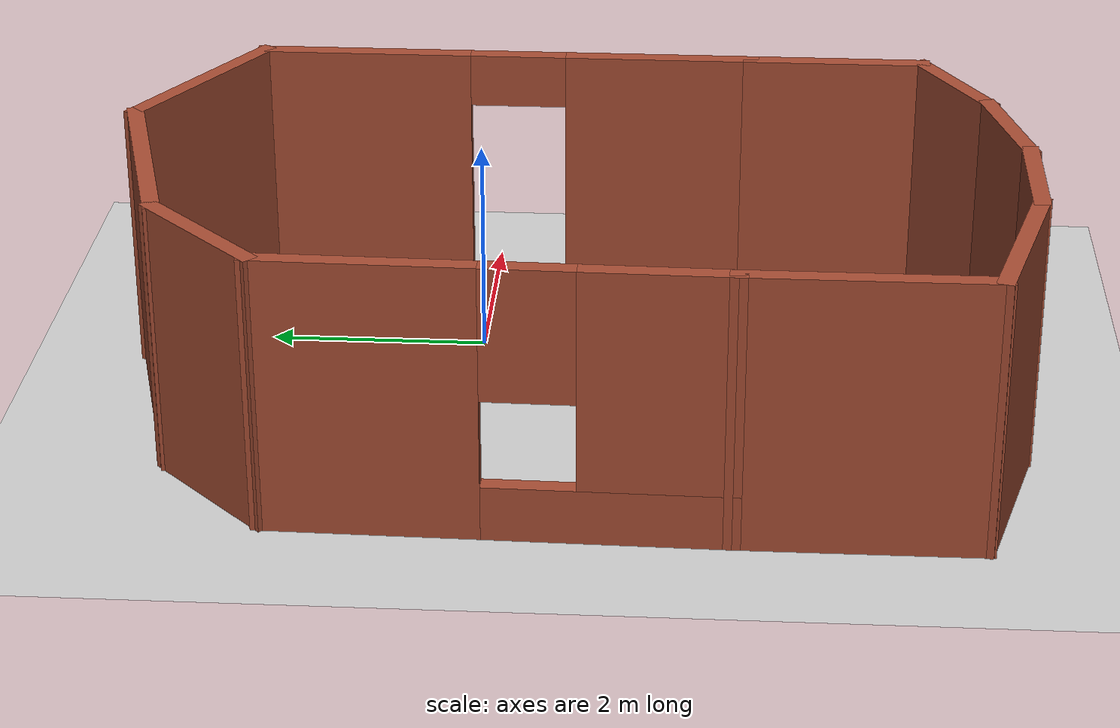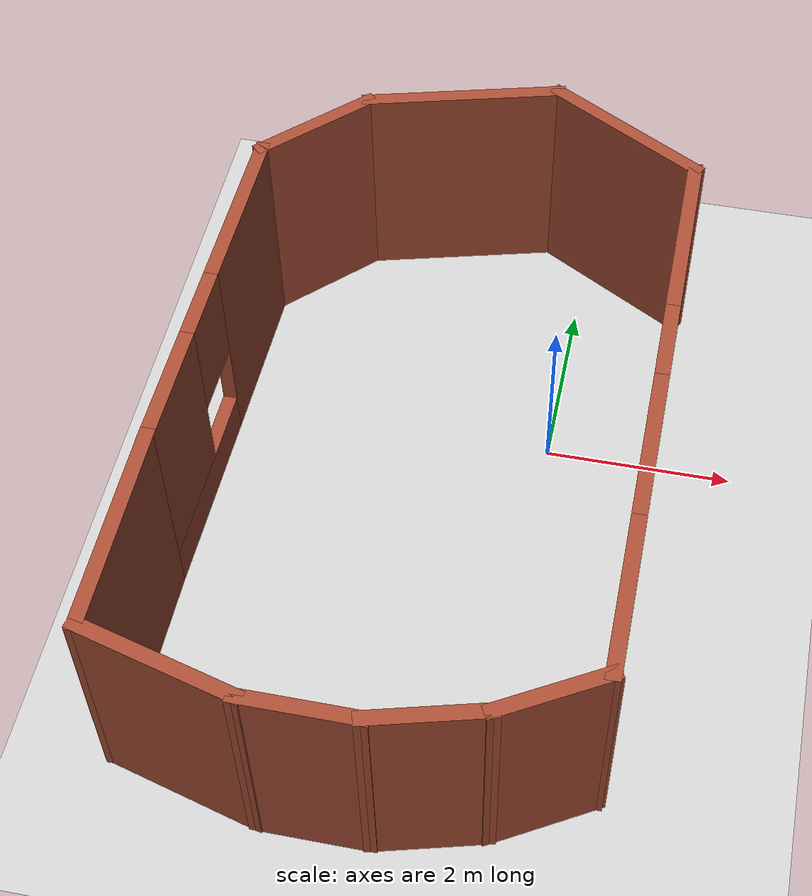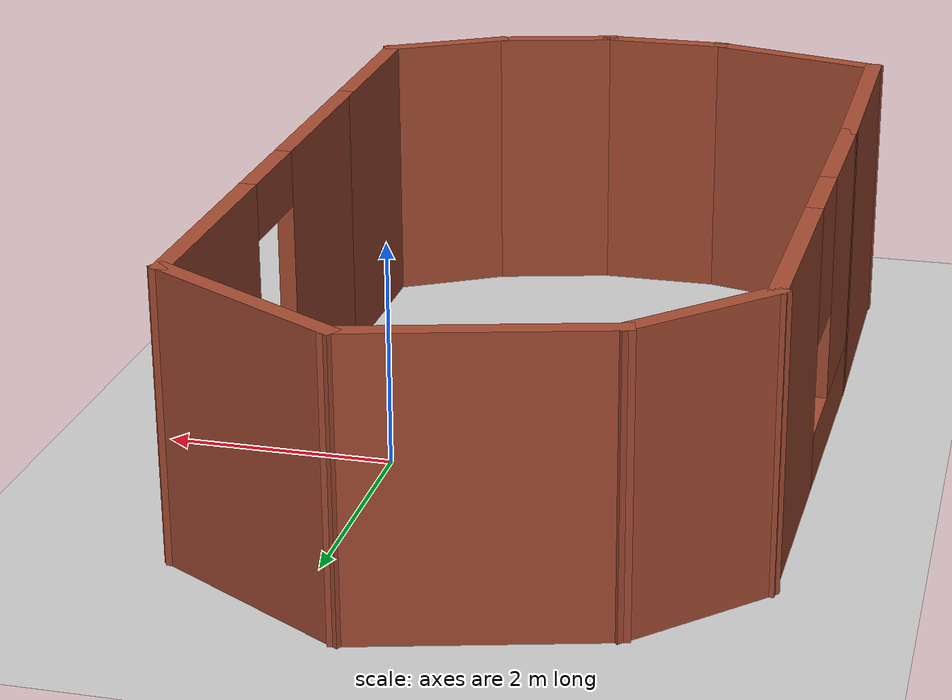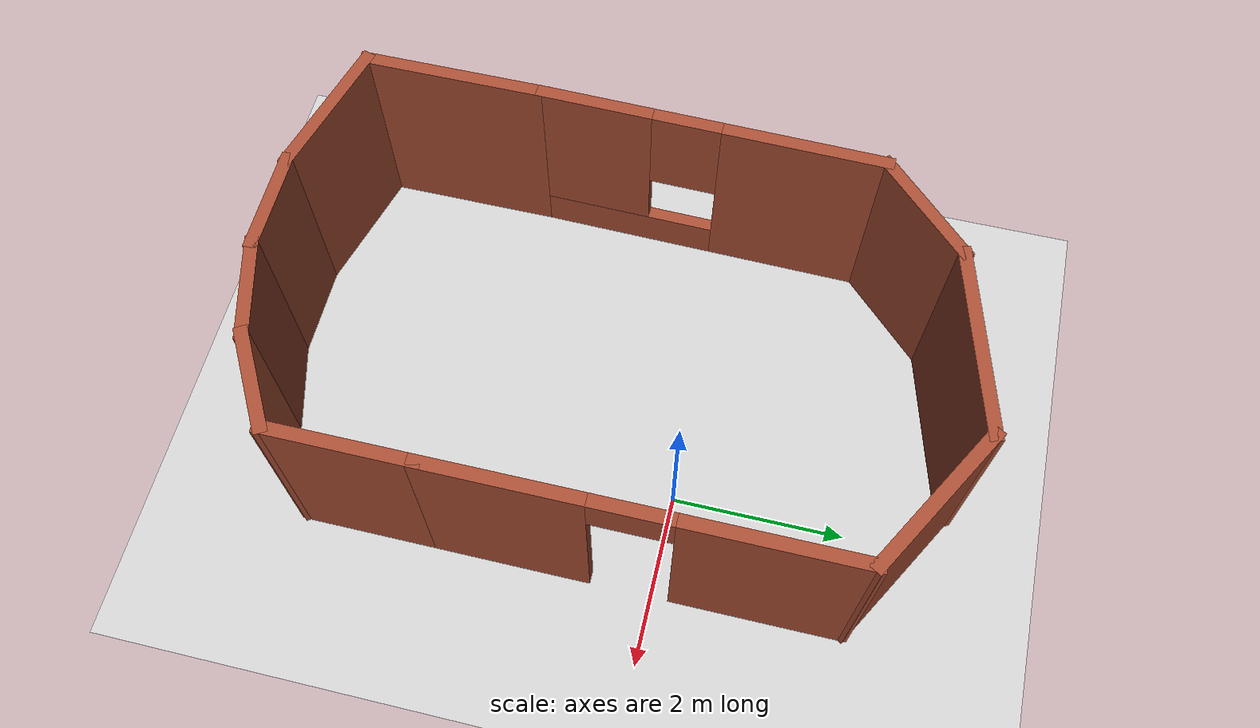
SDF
<sdf version="1.7">
 <world name="default">
  <light name="sun" type="directional">
   <pose>0 0 10 0 -0 0</pose>
   <diffuse>0.8 0.8 0.8 1</diffuse>
   <specular>0.2 0.2 0.2 1</specular>
   <attenuation>
    <range>1000</range>
    <constant>0.9</constant>
    <linear>0.01</linear>
    <quadratic>0.001</quadratic>
   </attenuation>
   <direction>-0.5 0.1 -0.9</direction>
   <spot><inner_angle>0</inner_angle><outer_angle>0</outer_angle><falloff>0</falloff></spot>
  </light>
  <model name="ground_plane">
   <static>1</static>
   <link name="link">
    <collision name="collision">
     <geometry><plane><normal>0 0 1</normal><size>100 100</size></plane></geometry>
     <surface>
      <contact><collide_bitmask>65535</collide_bitmask></contact>
      <friction><ode><mu>100</mu><mu2>50</mu2></ode></friction>
     </surface>
    </collision>
    <visual name="visual">
     <cast_shadows>0</cast_shadows>
     <geometry><plane><normal>0 0 1</normal><size>100 100</size></plane></geometry>
     <material>
      <script><uri>file://media/materials/scripts/gazebo.material</uri><name>Gazebo/Grey</name></script>
     </material>
    </visual>
   </link>
  </model>
  <gravity>0 0 -9.8</gravity>
  <magnetic_field>6e-06 2.3e-05 -4.2e-05</magnetic_field>
  <atmosphere type="adiabatic"/>
  <physics type="ode">
   <max_step_size>0.001</max_step_size>
   <real_time_factor>1</real_time_factor>
   <real_time_update_rate>1000</real_time_update_rate>
  </physics>
  <scene><ambient>0.4 0.4 0.4 1</ambient><background>0.7 0.7 0.7 1</background><shadows>1</shadows></scene>
  <spherical_coordinates>
   <surface_model>EARTH_WGS84</surface_model>
   <latitude_deg>0</latitude_deg>
   <longitude_deg>0</longitude_deg>
   <elevation>0</elevation>
   <heading_deg>0</heading_deg>
  </spherical_coordinates>
  <model name="my_building">
   <pose>-1.20439 -0.898962 0 0 -0 0</pose>
   <link name="Wall_0">
    <collision name="Wall_0_Collision">
     <geometry><box><size>2.25 0.15 2.5</size></box></geometry>
     <pose>0 0 1.25 0 -0 0</pose>
    </collision>
    <visual name="Wall_0_Visual">
     <pose>0 0 1.25 0 -0 0</pose>
     <geometry><box><size>2.25 0.15 2.5</size></box></geometry>
     <material>
      <script><uri>file://media/materials/scripts/gazebo.material</uri><name>Gazebo/Bricks</name></script>
      <ambient>1 1 1 1</ambient>
     </material>
     <meta><layer>0</layer></meta>
    </visual>
    <pose>-2.33561 -2.52104 0 0 -0 -1.5708</pose>
   </link>
   <link name="Wall_1">
    <collision name="Wall_1_Collision">
     <geometry><box><size>1.75 0.15 2.5</size></box></geometry>
     <pose>0 0 1.25 0 -0 0</pose>
    </collision>
    <visual name="Wall_1_Visual">
     <pose>0 0 1.25 0 -0 0</pose>
     <geometry><box><size>1.75 0.15 2.5</size></box></geometry>
     <material>
      <script><uri>file://media/materials/scripts/gazebo.material</uri><name>Gazebo/Bricks</name></script>
      <ambient>1 1 1 1</ambient>
     </material>
     <meta><layer>0</layer></meta>
    </visual>
    <pose>-1.56287 -3.77809 0 0 -0 -0.261799</pose>
   </link>
   <link name="Wall_10">
    <pose>-2.29789 0.5027 0 0 -0 -1.5899</pose>
    <visual name="Wall_10_Visual_0">
     <pose>-1.07978 0 1.25 0 -0 0</pose>
     <geometry><box><size>1.93864 0.15 2.5</size></box></geometry>
     <material>
      <script><uri>file://media/materials/scripts/gazebo.material</uri><name>Gazebo/Bricks</name></script>
      <ambient>1 1 1 1</ambient>
     </material>
     <meta><layer>0</layer></meta>
    </visual>
    <collision name="Wall_10_Collision_0">
     <geometry><box><size>1.93864 0.15 2.5</size></box></geometry>
     <pose>-1.07978 0 1.25 0 -0 0</pose>
    </collision>
    <visual name="Wall_10_Visual_1">
     <pose>0.969322 0 0.25 0 -0 0</pose>
     <geometry><box><size>2.15955 0.15 0.5</size></box></geometry>
     <material>
      <script><uri>file://media/materials/scripts/gazebo.material</uri><name>Gazebo/Bricks</name></script>
      <ambient>1 1 1 1</ambient>
     </material>
     <meta><layer>0</layer></meta>
    </visual>
    <collision name="Wall_10_Collision_1">
     <geometry><box><size>2.15955 0.15 0.5</size></box></geometry>
     <pose>0.969322 0 0.25 0 -0 0</pose>
    </collision>
    <visual name="Wall_10_Visual_2">
     <pose>1.36932 0 1.5 0 -0 0</pose>
     <geometry><box><size>1.35955 0.15 2</size></box></geometry>
     <material>
      <script><uri>file://media/materials/scripts/gazebo.material</uri><name>Gazebo/Bricks</name></script>
      <ambient>1 1 1 1</ambient>
     </material>
     <meta><layer>0</layer></meta>
    </visual>
    <collision name="Wall_10_Collision_2">
     <geometry><box><size>1.35955 0.15 2</size></box></geometry>
     <pose>1.36932 0 1.5 0 -0 0</pose>
    </collision>
    <visual name="Wall_10_Visual_3">
     <pose>0.289545 0 1.9 0 -0 0</pose>
     <geometry><box><size>0.8 0.15 1.2</size></box></geometry>
     <material>
      <script><uri>file://media/materials/scripts/gazebo.material</uri><name>Gazebo/Bricks</name></script>
      <ambient>1 1 1 1</ambient>
     </material>
     <meta><layer>0</layer></meta>
    </visual>
    <collision name="Wall_10_Collision_3">
     <geometry><box><size>0.8 0.15 1.2</size></box></geometry>
     <pose>0.289545 0 1.9 0 -0 0</pose>
    </collision>
   </link>
   <link name="Wall_2">
    <collision name="Wall_2_Collision">
     <geometry><box><size>1.25 0.15 2.5</size></box></geometry>
     <pose>0 0 1.25 0 -0 0</pose>
    </collision>
    <visual name="Wall_2_Visual">
     <pose>0 0 1.25 0 -0 0</pose>
     <geometry><box><size>1.25 0.15 2.5</size></box></geometry>
     <material>
      <script><uri>file://media/materials/scripts/gazebo.material</uri><name>Gazebo/Bricks</name></script>
      <ambient>1 1 1 1</ambient>
     </material>
     <meta><layer>0</layer></meta>
    </visual>
    <pose>-0.240131 -3.98515 0 0 -0 0</pose>
   </link>
   <link name="Wall_3">
    <collision name="Wall_3_Collision">
     <geometry><box><size>1.25 0.15 2.5</size></box></geometry>
     <pose>0 0 1.25 0 -0 0</pose>
    </collision>
    <visual name="Wall_3_Visual">
     <pose>0 0 1.25 0 -0 0</pose>
     <geometry><box><size>1.25 0.15 2.5</size></box></geometry>
     <material>
      <script><uri>file://media/materials/scripts/gazebo.material</uri><name>Gazebo/Bricks</name></script>
      <ambient>1 1 1 1</ambient>
     </material>
     <meta><layer>0</layer></meta>
    </visual>
    <pose>0.841128 -3.8428 0 0 -0 0.261799</pose>
   </link>
   <link name="Wall_4">
    <collision name="Wall_4_Collision">
     <geometry><box><size>1.25 0.15 2.5</size></box></geometry>
     <pose>0 0 1.25 0 -0 0</pose>
    </collision>
    <visual name="Wall_4_Visual">
     <pose>0 0 1.25 0 -0 0</pose>
     <geometry><box><size>1.25 0.15 2.5</size></box></geometry>
     <material>
      <script><uri>file://media/materials/scripts/gazebo.material</uri><name>Gazebo/Bricks</name></script>
      <ambient>1 1 1 1</ambient>
     </material>
     <meta><layer>0</layer></meta>
    </visual>
    <pose>1.8487 -3.42545 0 0 -0 0.523599</pose>
   </link>
   <link name="Wall_5">
    <collision name="Wall_5_Collision">
     <geometry><box><size>1.75 0.15 2.5</size></box></geometry>
     <pose>0 0 1.25 0 -0 0</pose>
    </collision>
    <visual name="Wall_5_Visual">
     <pose>0 0 1.25 0 -0 0</pose>
     <geometry><box><size>1.75 0.15 2.5</size></box></geometry>
     <material>
      <script><uri>file://media/materials/scripts/gazebo.material</uri><name>Gazebo/Bricks</name></script>
      <ambient>1 1 1 1</ambient>
     </material>
     <meta><layer>0</layer></meta>
    </visual>
    <pose>2.32502 -2.35045 0 0 -0 1.5708</pose>
   </link>
   <link name="Wall_6">
    <pose>2.32502 0.749552 0 0 -0 1.5708</pose>
    <visual name="Wall_6_Visual_0">
     <pose>-1.46487 0 1.25 0 -0 0</pose>
     <geometry><box><size>1.82027 0.15 2.5</size></box></geometry>
     <material>
      <script><uri>file://media/materials/scripts/gazebo.material</uri><name>Gazebo/Bricks</name></script>
      <ambient>1 1 1 1</ambient>
     </material>
     <meta><layer>0</layer></meta>
    </visual>
    <collision name="Wall_6_Collision_0">
     <geometry><box><size>1.82027 0.15 2.5</size></box></geometry>
     <pose>-1.46487 0 1.25 0 -0 0</pose>
    </collision>
    <visual name="Wall_6_Visual_1">
     <pose>1.36013 0 1.25 0 -0 0</pose>
     <geometry><box><size>2.02973 0.15 2.5</size></box></geometry>
     <material>
      <script><uri>file://media/materials/scripts/gazebo.material</uri><name>Gazebo/Bricks</name></script>
      <ambient>1 1 1 1</ambient>
     </material>
     <meta><layer>0</layer></meta>
    </visual>
    <collision name="Wall_6_Collision_1">
     <geometry><box><size>2.02973 0.15 2.5</size></box></geometry>
     <pose>1.36013 0 1.25 0 -0 0</pose>
    </collision>
    <visual name="Wall_6_Visual_2">
     <pose>-0.104734 0 2.25 0 -0 0</pose>
     <geometry><box><size>0.9 0.15 0.5</size></box></geometry>
     <material>
      <script><uri>file://media/materials/scripts/gazebo.material</uri><name>Gazebo/Bricks</name></script>
      <ambient>1 1 1 1</ambient>
     </material>
     <meta><layer>0</layer></meta>
    </visual>
    <collision name="Wall_6_Collision_2">
     <geometry><box><size>0.9 0.15 0.5</size></box></geometry>
     <pose>-0.104734 0 2.25 0 -0 0</pose>
    </collision>
   </link>
   <link name="Wall_7">
    <collision name="Wall_7_Collision">
     <geometry><box><size>2 0.15 2.5</size></box></geometry>
     <pose>0 0 1.25 0 -0 0</pose>
    </collision>
    <visual name="Wall_7_Visual">
     <pose>0 0 1.25 0 -0 0</pose>
     <geometry><box><size>2 0.15 2.5</size></box></geometry>
     <material>
      <script><uri>file://media/materials/scripts/gazebo.material</uri><name>Gazebo/Bricks</name></script>
      <ambient>1 1 1 1</ambient>
     </material>
     <meta><layer>0</layer></meta>
    </visual>
    <pose>1.52394 3.51205 0 0 -0 2.61799</pose>
   </link>
   <link name="Wall_8">
    <collision name="Wall_8_Collision">
     <geometry><box><size>2.25 0.15 2.5</size></box></geometry>
     <pose>0 0 1.25 0 -0 0</pose>
    </collision>
    <visual name="Wall_8_Visual">
     <pose>0 0 1.25 0 -0 0</pose>
     <geometry><box><size>2.25 0.15 2.5</size></box></geometry>
     <material>
      <script><uri>file://media/materials/scripts/gazebo.material</uri><name>Gazebo/Bricks</name></script>
      <ambient>1 1 1 1</ambient>
     </material>
     <meta><layer>0</layer></meta>
    </visual>
    <pose>-0.291354 3.70279 0 0 -0 -2.87979</pose>
   </link>
   <link name="Wall_9">
    <collision name="Wall_9_Collision">
     <geometry><box><size>1.5 0.15 2.5</size></box></geometry>
     <pose>0 0 1.25 0 -0 0</pose>
    </collision>
    <visual name="Wall_9_Visual">
     <pose>0 0 1.25 0 -0 0</pose>
     <geometry><box><size>1.5 0.15 2.5</size></box></geometry>
     <material>
      <script><uri>file://media/materials/scripts/gazebo.material</uri><name>Gazebo/Bricks</name></script>
      <ambient>1 1 1 1</ambient>
     </material>
     <meta><layer>0</layer></meta>
    </visual>
    <pose>-1.78287 2.95373 0 0 -0 -2.35619</pose>
   </link>
   <static>1</static>
  </model>
 </world>
</sdf>
